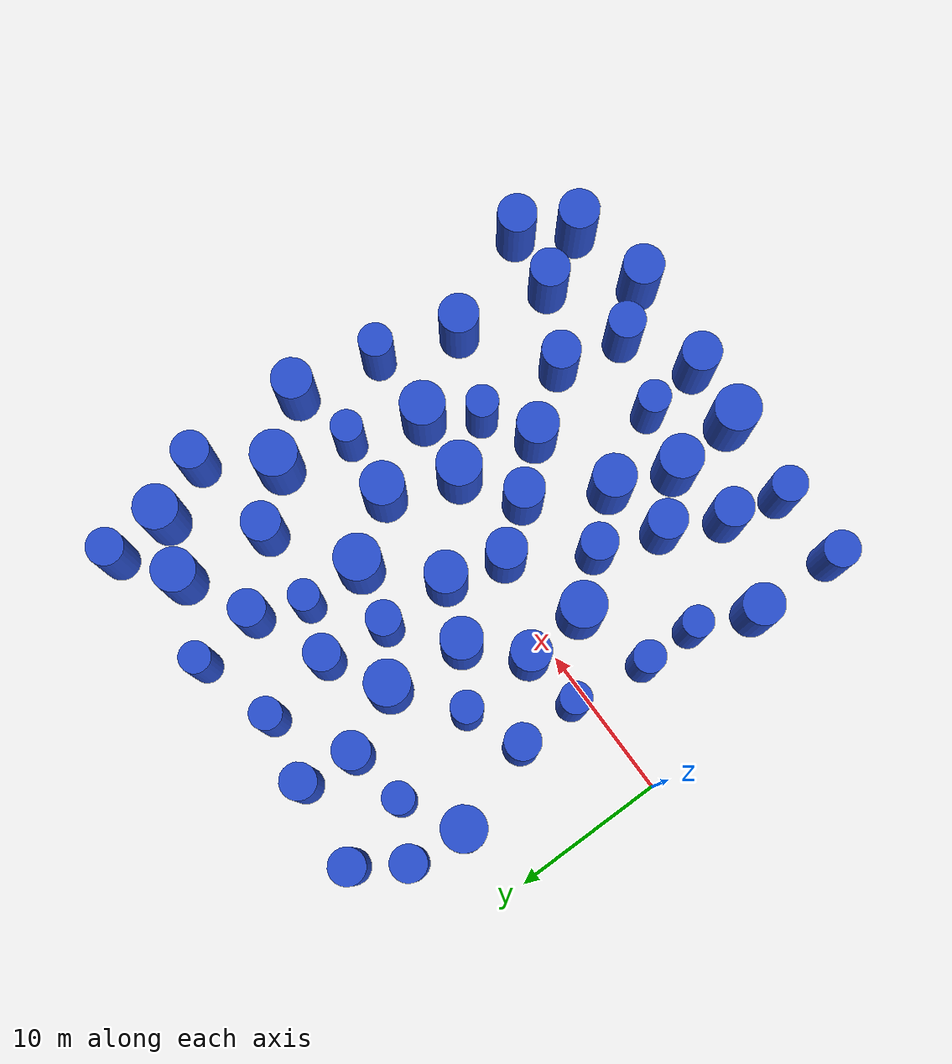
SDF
<sdf version="1.7">
 <world name="default">
  <model name="26">
   <static>1</static>
   <link name="link">
    <inertial>
     <mass>2</mass>
     <inertia><ixx>6.90968</ixx><ixy>0</ixy><ixz>0</ixz><iyy>6.90968</iyy><iyz>0</iyz><izz>1.81936</izz></inertia>
    </inertial>
    <collision name="collision">
     <geometry><cylinder><length>6</length><radius>1.34884</radius></cylinder></geometry>
     <surface><contact><collide_without_contact>1</collide_without_contact></contact></surface>
    </collision>
    <visual name="visual">
     <geometry><cylinder><length>6</length><radius>1.34884</radius></cylinder></geometry>
     <material>
      <script><uri>file://media/materials/scripts/gazebo.material</uri><name>Gazebo/Blue</name></script>
     </material>
    </visual>
    <gravity>0</gravity>
   </link>
   <pose>17.797 2.75537 3 0 -0 0</pose>
  </model>
  <model name="29">
   <static>1</static>
   <link name="link">
    <inertial>
     <mass>2</mass>
     <inertia><ixx>7.11043</ixx><ixy>0</ixy><ixz>0</ixz><iyy>7.11043</iyy><iyz>0</iyz><izz>2.22087</izz></inertia>
    </inertial>
    <collision name="collision">
     <geometry><cylinder><length>6</length><radius>1.49026</radius></cylinder></geometry>
     <surface><contact><collide_without_contact>1</collide_without_contact></contact></surface>
    </collision>
    <visual name="visual">
     <geometry><cylinder><length>6</length><radius>1.49026</radius></cylinder></geometry>
     <material>
      <script><uri>file://media/materials/scripts/gazebo.material</uri><name>Gazebo/Blue</name></script>
     </material>
    </visual>
    <gravity>0</gravity>
   </link>
   <pose>15.2994 -17.7088 3 0 -0 0</pose>
  </model>
  <model name="31">
   <static>1</static>
   <link name="link">
    <inertial>
     <mass>2</mass>
     <inertia><ixx>7.07822</ixx><ixy>0</ixy><ixz>0</ixz><iyy>7.07822</iyy><iyz>0</iyz><izz>2.15645</izz></inertia>
    </inertial>
    <collision name="collision">
     <geometry><cylinder><length>6</length><radius>1.46848</radius></cylinder></geometry>
     <surface><contact><collide_without_contact>1</collide_without_contact></contact></surface>
    </collision>
    <visual name="visual">
     <geometry><cylinder><length>6</length><radius>1.46848</radius></cylinder></geometry>
     <material>
      <script><uri>file://media/materials/scripts/gazebo.material</uri><name>Gazebo/Blue</name></script>
     </material>
    </visual>
    <gravity>0</gravity>
   </link>
   <pose>11.2363 -2.75679 3 0 -0 0</pose>
  </model>
  <model name="36">
   <static>1</static>
   <link name="link">
    <inertial>
     <mass>2</mass>
     <inertia><ixx>7.10005</ixx><ixy>0</ixy><ixz>0</ixz><iyy>7.10005</iyy><iyz>0</iyz><izz>2.2001</izz></inertia>
    </inertial>
    <collision name="collision">
     <geometry><cylinder><length>6</length><radius>1.48327</radius></cylinder></geometry>
     <surface><contact><collide_without_contact>1</collide_without_contact></contact></surface>
    </collision>
    <visual name="visual">
     <geometry><cylinder><length>6</length><radius>1.48327</radius></cylinder></geometry>
     <material>
      <script><uri>file://media/materials/scripts/gazebo.material</uri><name>Gazebo/Blue</name></script>
     </material>
    </visual>
    <gravity>0</gravity>
   </link>
   <pose>21.7263 6.52536 3 0 -0 0</pose>
  </model>
  <model name="44">
   <static>1</static>
   <link name="link">
    <inertial>
     <mass>2</mass>
     <inertia><ixx>6.87836</ixx><ixy>0</ixy><ixz>0</ixz><iyy>6.87836</iyy><iyz>0</iyz><izz>1.75673</izz></inertia>
    </inertial>
    <collision name="collision">
     <geometry><cylinder><length>6</length><radius>1.32542</radius></cylinder></geometry>
     <surface><contact><collide_without_contact>1</collide_without_contact></contact></surface>
    </collision>
    <visual name="visual">
     <geometry><cylinder><length>6</length><radius>1.32542</radius></cylinder></geometry>
     <material>
      <script><uri>file://media/materials/scripts/gazebo.material</uri><name>Gazebo/Blue</name></script>
     </material>
    </visual>
    <gravity>0</gravity>
   </link>
   <pose>4.77864 -11.492 3 0 -0 0</pose>
  </model>
  <model name="54">
   <static>1</static>
   <link name="link">
    <inertial>
     <mass>2</mass>
     <inertia><ixx>6.79907</ixx><ixy>0</ixy><ixz>0</ixz><iyy>6.79907</iyy><iyz>0</iyz><izz>1.59813</izz></inertia>
    </inertial>
    <collision name="collision">
     <geometry><cylinder><length>6</length><radius>1.26417</radius></cylinder></geometry>
     <surface><contact><collide_without_contact>1</collide_without_contact></contact></surface>
    </collision>
    <visual name="visual">
     <geometry><cylinder><length>6</length><radius>1.26417</radius></cylinder></geometry>
     <material>
      <script><uri>file://media/materials/scripts/gazebo.material</uri><name>Gazebo/Blue</name></script>
     </material>
    </visual>
    <gravity>0</gravity>
   </link>
   <pose>33.3522 -14.2803 3 0 -0 0</pose>
  </model>
  <model name="59">
   <static>1</static>
   <link name="link">
    <inertial>
     <mass>2</mass>
     <inertia><ixx>6.64889</ixx><ixy>0</ixy><ixz>0</ixz><iyy>6.64889</iyy><iyz>0</iyz><izz>1.29779</izz></inertia>
    </inertial>
    <collision name="collision">
     <geometry><cylinder><length>6</length><radius>1.1392</radius></cylinder></geometry>
     <surface><contact><collide_without_contact>1</collide_without_contact></contact></surface>
    </collision>
    <visual name="visual">
     <geometry><cylinder><length>6</length><radius>1.1392</radius></cylinder></geometry>
     <material>
      <script><uri>file://media/materials/scripts/gazebo.material</uri><name>Gazebo/Blue</name></script>
     </material>
    </visual>
    <gravity>0</gravity>
   </link>
   <pose>9.66918 -17.3269 3 0 -0 0</pose>
  </model>
  <model name="72">
   <static>1</static>
   <link name="link">
    <inertial>
     <mass>2</mass>
     <inertia><ixx>6.70542</ixx><ixy>0</ixy><ixz>0</ixz><iyy>6.70542</iyy><iyz>0</iyz><izz>1.41083</izz></inertia>
    </inertial>
    <collision name="collision">
     <geometry><cylinder><length>6</length><radius>1.18779</radius></cylinder></geometry>
     <surface><contact><collide_without_contact>1</collide_without_contact></contact></surface>
    </collision>
    <visual name="visual">
     <geometry><cylinder><length>6</length><radius>1.18779</radius></cylinder></geometry>
     <material>
      <script><uri>file://media/materials/scripts/gazebo.material</uri><name>Gazebo/Blue</name></script>
     </material>
    </visual>
    <gravity>0</gravity>
   </link>
   <pose>23.7818 -15.6266 3 0 -0 0</pose>
  </model>
  <model name="73">
   <static>1</static>
   <link name="link">
    <inertial>
     <mass>2</mass>
     <inertia><ixx>6.53105</ixx><ixy>0</ixy><ixz>0</ixz><iyy>6.53105</iyy><iyz>0</iyz><izz>1.06209</izz></inertia>
    </inertial>
    <collision name="collision">
     <geometry><cylinder><length>6</length><radius>1.03058</radius></cylinder></geometry>
     <surface><contact><collide_without_contact>1</collide_without_contact></contact></surface>
    </collision>
    <visual name="visual">
     <geometry><cylinder><length>6</length><radius>1.03058</radius></cylinder></geometry>
     <material>
      <script><uri>file://media/materials/scripts/gazebo.material</uri><name>Gazebo/Blue</name></script>
     </material>
    </visual>
    <gravity>0</gravity>
   </link>
   <pose>6.3697 -4.0288 3 0 -0 0</pose>
  </model>
  <model name="76">
   <static>1</static>
   <link name="link">
    <inertial>
     <mass>2</mass>
     <inertia><ixx>6.69533</ixx><ixy>0</ixy><ixz>0</ixz><iyy>6.69533</iyy><iyz>0</iyz><izz>1.39065</izz></inertia>
    </inertial>
    <collision name="collision">
     <geometry><cylinder><length>6</length><radius>1.17926</radius></cylinder></geometry>
     <surface><contact><collide_without_contact>1</collide_without_contact></contact></surface>
    </collision>
    <visual name="visual">
     <geometry><cylinder><length>6</length><radius>1.17926</radius></cylinder></geometry>
     <material>
      <script><uri>file://media/materials/scripts/gazebo.material</uri><name>Gazebo/Blue</name></script>
     </material>
    </visual>
    <gravity>0</gravity>
   </link>
   <pose>23.186 13.6856 3 0 -0 0</pose>
  </model>
  <model name="84">
   <static>1</static>
   <link name="link">
    <inertial>
     <mass>2</mass>
     <inertia><ixx>6.99272</ixx><ixy>0</ixy><ixz>0</ixz><iyy>6.99272</iyy><iyz>0</iyz><izz>1.98545</izz></inertia>
    </inertial>
    <collision name="collision">
     <geometry><cylinder><length>6</length><radius>1.40906</radius></cylinder></geometry>
     <surface><contact><collide_without_contact>1</collide_without_contact></contact></surface>
    </collision>
    <visual name="visual">
     <geometry><cylinder><length>6</length><radius>1.40906</radius></cylinder></geometry>
     <material>
      <script><uri>file://media/materials/scripts/gazebo.material</uri><name>Gazebo/Blue</name></script>
     </material>
    </visual>
    <gravity>0</gravity>
   </link>
   <pose>14.9496 -13.0744 3 0 -0 0</pose>
  </model>
  <model name="87">
   <static>1</static>
   <link name="link">
    <inertial>
     <mass>2</mass>
     <inertia><ixx>6.52052</ixx><ixy>0</ixy><ixz>0</ixz><iyy>6.52052</iyy><iyz>0</iyz><izz>1.04104</izz></inertia>
    </inertial>
    <collision name="collision">
     <geometry><cylinder><length>6</length><radius>1.02032</radius></cylinder></geometry>
     <surface><contact><collide_without_contact>1</collide_without_contact></contact></surface>
    </collision>
    <visual name="visual">
     <geometry><cylinder><length>6</length><radius>1.02032</radius></cylinder></geometry>
     <material>
      <script><uri>file://media/materials/scripts/gazebo.material</uri><name>Gazebo/Blue</name></script>
     </material>
    </visual>
    <gravity>0</gravity>
   </link>
   <pose>8.57467 13.0563 3 0 -0 0</pose>
  </model>
  <model name="98">
   <static>1</static>
   <link name="link">
    <inertial>
     <mass>2</mass>
     <inertia><ixx>6.89348</ixx><ixy>0</ixy><ixz>0</ixz><iyy>6.89348</iyy><iyz>0</iyz><izz>1.78696</izz></inertia>
    </inertial>
    <collision name="collision">
     <geometry><cylinder><length>6</length><radius>1.33677</radius></cylinder></geometry>
     <surface><contact><collide_without_contact>1</collide_without_contact></contact></surface>
    </collision>
    <visual name="visual">
     <geometry><cylinder><length>6</length><radius>1.33677</radius></cylinder></geometry>
     <material>
      <script><uri>file://media/materials/scripts/gazebo.material</uri><name>Gazebo/Blue</name></script>
     </material>
    </visual>
    <gravity>0</gravity>
   </link>
   <pose>13.9896 4.38214 3 0 -0 0</pose>
  </model>
  <model name="105">
   <static>1</static>
   <link name="link">
    <inertial>
     <mass>2</mass>
     <inertia><ixx>6.53838</ixx><ixy>0</ixy><ixz>0</ixz><iyy>6.53838</iyy><iyz>0</iyz><izz>1.07676</izz></inertia>
    </inertial>
    <collision name="collision">
     <geometry><cylinder><length>6</length><radius>1.03767</radius></cylinder></geometry>
     <surface><contact><collide_without_contact>1</collide_without_contact></contact></surface>
    </collision>
    <visual name="visual">
     <geometry><cylinder><length>6</length><radius>1.03767</radius></cylinder></geometry>
     <material>
      <script><uri>file://media/materials/scripts/gazebo.material</uri><name>Gazebo/Blue</name></script>
     </material>
    </visual>
    <gravity>0</gravity>
   </link>
   <pose>17.3373 16.4703 3 0 -0 0</pose>
  </model>
  <model name="111">
   <static>1</static>
   <link name="link">
    <inertial>
     <mass>2</mass>
     <inertia><ixx>6.54004</ixx><ixy>0</ixy><ixz>0</ixz><iyy>6.54004</iyy><iyz>0</iyz><izz>1.08008</izz></inertia>
    </inertial>
    <collision name="collision">
     <geometry><cylinder><length>6</length><radius>1.03927</radius></cylinder></geometry>
     <surface><contact><collide_without_contact>1</collide_without_contact></contact></surface>
    </collision>
    <visual name="visual">
     <geometry><cylinder><length>6</length><radius>1.03927</radius></cylinder></geometry>
     <material>
      <script><uri>file://media/materials/scripts/gazebo.material</uri><name>Gazebo/Blue</name></script>
     </material>
    </visual>
    <gravity>0</gravity>
   </link>
   <pose>24.9919 -5.33732 3 0 -0 0</pose>
  </model>
  <model name="112">
   <static>1</static>
   <link name="link">
    <inertial>
     <mass>2</mass>
     <inertia><ixx>6.68907</ixx><ixy>0</ixy><ixz>0</ixz><iyy>6.68907</iyy><iyz>0</iyz><izz>1.37813</izz></inertia>
    </inertial>
    <collision name="collision">
     <geometry><cylinder><length>6</length><radius>1.17394</radius></cylinder></geometry>
     <surface><contact><collide_without_contact>1</collide_without_contact></contact></surface>
    </collision>
    <visual name="visual">
     <geometry><cylinder><length>6</length><radius>1.17394</radius></cylinder></geometry>
     <material>
      <script><uri>file://media/materials/scripts/gazebo.material</uri><name>Gazebo/Blue</name></script>
     </material>
    </visual>
    <gravity>0</gravity>
   </link>
   <pose>7.13982 17.8593 3 0 -0 0</pose>
  </model>
  <model name="125">
   <static>1</static>
   <link name="link">
    <inertial>
     <mass>2</mass>
     <inertia><ixx>6.50092</ixx><ixy>0</ixy><ixz>0</ixz><iyy>6.50092</iyy><iyz>0</iyz><izz>1.00184</izz></inertia>
    </inertial>
    <collision name="collision">
     <geometry><cylinder><length>6</length><radius>1.00092</radius></cylinder></geometry>
     <surface><contact><collide_without_contact>1</collide_without_contact></contact></surface>
    </collision>
    <visual name="visual">
     <geometry><cylinder><length>6</length><radius>1.00092</radius></cylinder></geometry>
     <material>
      <script><uri>file://media/materials/scripts/gazebo.material</uri><name>Gazebo/Blue</name></script>
     </material>
    </visual>
    <gravity>0</gravity>
   </link>
   <pose>6.31835 -7.65434 3 0 -0 0</pose>
  </model>
  <model name="128">
   <static>1</static>
   <link name="link">
    <inertial>
     <mass>2</mass>
     <inertia><ixx>6.95358</ixx><ixy>0</ixy><ixz>0</ixz><iyy>6.95358</iyy><iyz>0</iyz><izz>1.90715</izz></inertia>
    </inertial>
    <collision name="collision">
     <geometry><cylinder><length>6</length><radius>1.381</radius></cylinder></geometry>
     <surface><contact><collide_without_contact>1</collide_without_contact></contact></surface>
    </collision>
    <visual name="visual">
     <geometry><cylinder><length>6</length><radius>1.381</radius></cylinder></geometry>
     <material>
      <script><uri>file://media/materials/scripts/gazebo.material</uri><name>Gazebo/Blue</name></script>
     </material>
    </visual>
    <gravity>0</gravity>
   </link>
   <pose>16.4331 -9.06463 3 0 -0 0</pose>
  </model>
  <model name="136">
   <static>1</static>
   <link name="link">
    <inertial>
     <mass>2</mass>
     <inertia><ixx>6.51285</ixx><ixy>0</ixy><ixz>0</ixz><iyy>6.51285</iyy><iyz>0</iyz><izz>1.02571</izz></inertia>
    </inertial>
    <collision name="collision">
     <geometry><cylinder><length>6</length><radius>1.01277</radius></cylinder></geometry>
     <surface><contact><collide_without_contact>1</collide_without_contact></contact></surface>
    </collision>
    <visual name="visual">
     <geometry><cylinder><length>6</length><radius>1.01277</radius></cylinder></geometry>
     <material>
      <script><uri>file://media/materials/scripts/gazebo.material</uri><name>Gazebo/Blue</name></script>
     </material>
    </visual>
    <gravity>0</gravity>
   </link>
   <pose>7.02532 1.01878 3 0 -0 0</pose>
  </model>
  <model name="141">
   <static>1</static>
   <link name="link">
    <inertial>
     <mass>2</mass>
     <inertia><ixx>6.83627</ixx><ixy>0</ixy><ixz>0</ixz><iyy>6.83627</iyy><iyz>0</iyz><izz>1.67253</izz></inertia>
    </inertial>
    <collision name="collision">
     <geometry><cylinder><length>6</length><radius>1.29327</radius></cylinder></geometry>
     <surface><contact><collide_without_contact>1</collide_without_contact></contact></surface>
    </collision>
    <visual name="visual">
     <geometry><cylinder><length>6</length><radius>1.29327</radius></cylinder></geometry>
     <material>
      <script><uri>file://media/materials/scripts/gazebo.material</uri><name>Gazebo/Blue</name></script>
     </material>
    </visual>
    <gravity>0</gravity>
   </link>
   <pose>19.1025 -4.1773 3 0 -0 0</pose>
  </model>
  <model name="152">
   <static>1</static>
   <link name="link">
    <inertial>
     <mass>2</mass>
     <inertia><ixx>6.68676</ixx><ixy>0</ixy><ixz>0</ixz><iyy>6.68676</iyy><iyz>0</iyz><izz>1.37351</izz></inertia>
    </inertial>
    <collision name="collision">
     <geometry><cylinder><length>6</length><radius>1.17197</radius></cylinder></geometry>
     <surface><contact><collide_without_contact>1</collide_without_contact></contact></surface>
    </collision>
    <visual name="visual">
     <geometry><cylinder><length>6</length><radius>1.17197</radius></cylinder></geometry>
     <material>
      <script><uri>file://media/materials/scripts/gazebo.material</uri><name>Gazebo/Blue</name></script>
     </material>
    </visual>
    <gravity>0</gravity>
   </link>
   <pose>18.3013 11.6358 3 0 -0 0</pose>
  </model>
  <model name="166">
   <static>1</static>
   <link name="link">
    <inertial>
     <mass>2</mass>
     <inertia><ixx>6.78781</ixx><ixy>0</ixy><ixz>0</ixz><iyy>6.78781</iyy><iyz>0</iyz><izz>1.57562</izz></inertia>
    </inertial>
    <collision name="collision">
     <geometry><cylinder><length>6</length><radius>1.25524</radius></cylinder></geometry>
     <surface><contact><collide_without_contact>1</collide_without_contact></contact></surface>
    </collision>
    <visual name="visual">
     <geometry><cylinder><length>6</length><radius>1.25524</radius></cylinder></geometry>
     <material>
      <script><uri>file://media/materials/scripts/gazebo.material</uri><name>Gazebo/Blue</name></script>
     </material>
    </visual>
    <gravity>0</gravity>
   </link>
   <pose>27.0002 9.93625 3 0 -0 0</pose>
  </model>
  <model name="174">
   <static>1</static>
   <link name="link">
    <inertial>
     <mass>2</mass>
     <inertia><ixx>6.51236</ixx><ixy>0</ixy><ixz>0</ixz><iyy>6.51236</iyy><iyz>0</iyz><izz>1.02472</izz></inertia>
    </inertial>
    <collision name="collision">
     <geometry><cylinder><length>6</length><radius>1.01228</radius></cylinder></geometry>
     <surface><contact><collide_without_contact>1</collide_without_contact></contact></surface>
    </collision>
    <visual name="visual">
     <geometry><cylinder><length>6</length><radius>1.01228</radius></cylinder></geometry>
     <material>
      <script><uri>file://media/materials/scripts/gazebo.material</uri><name>Gazebo/Blue</name></script>
     </material>
    </visual>
    <gravity>0</gravity>
   </link>
   <pose>22.6077 17.9279 3 0 -0 0</pose>
  </model>
  <model name="180">
   <static>1</static>
   <link name="link">
    <inertial>
     <mass>2</mass>
     <inertia><ixx>6.98453</ixx><ixy>0</ixy><ixz>0</ixz><iyy>6.98453</iyy><iyz>0</iyz><izz>1.96906</izz></inertia>
    </inertial>
    <collision name="collision">
     <geometry><cylinder><length>6</length><radius>1.40323</radius></cylinder></geometry>
     <surface><contact><collide_without_contact>1</collide_without_contact></contact></surface>
    </collision>
    <visual name="visual">
     <geometry><cylinder><length>6</length><radius>1.40323</radius></cylinder></geometry>
     <material>
      <script><uri>file://media/materials/scripts/gazebo.material</uri><name>Gazebo/Blue</name></script>
     </material>
    </visual>
    <gravity>0</gravity>
   </link>
   <pose>27.7296 15.9058 3 0 -0 0</pose>
  </model>
  <model name="205">
   <static>1</static>
   <link name="link">
    <inertial>
     <mass>2</mass>
     <inertia><ixx>6.85131</ixx><ixy>0</ixy><ixz>0</ixz><iyy>6.85131</iyy><iyz>0</iyz><izz>1.70262</izz></inertia>
    </inertial>
    <collision name="collision">
     <geometry><cylinder><length>6</length><radius>1.30484</radius></cylinder></geometry>
     <surface><contact><collide_without_contact>1</collide_without_contact></contact></surface>
    </collision>
    <visual name="visual">
     <geometry><cylinder><length>6</length><radius>1.30484</radius></cylinder></geometry>
     <material>
      <script><uri>file://media/materials/scripts/gazebo.material</uri><name>Gazebo/Blue</name></script>
     </material>
    </visual>
    <gravity>0</gravity>
   </link>
   <pose>31.2571 -17.5684 3 0 -0 0</pose>
  </model>
  <model name="209">
   <static>1</static>
   <link name="link">
    <inertial>
     <mass>2</mass>
     <inertia><ixx>6.52197</ixx><ixy>0</ixy><ixz>0</ixz><iyy>6.52197</iyy><iyz>0</iyz><izz>1.04394</izz></inertia>
    </inertial>
    <collision name="collision">
     <geometry><cylinder><length>6</length><radius>1.02174</radius></cylinder></geometry>
     <surface><contact><collide_without_contact>1</collide_without_contact></contact></surface>
    </collision>
    <visual name="visual">
     <geometry><cylinder><length>6</length><radius>1.02174</radius></cylinder></geometry>
     <material>
      <script><uri>file://media/materials/scripts/gazebo.material</uri><name>Gazebo/Blue</name></script>
     </material>
    </visual>
    <gravity>0</gravity>
   </link>
   <pose>28.6923 2.26967 3 0 -0 0</pose>
  </model>
  <model name="211">
   <static>1</static>
   <link name="link">
    <inertial>
     <mass>2</mass>
     <inertia><ixx>7.05137</ixx><ixy>0</ixy><ixz>0</ixz><iyy>7.05137</iyy><iyz>0</iyz><izz>2.10274</izz></inertia>
    </inertial>
    <collision name="collision">
     <geometry><cylinder><length>6</length><radius>1.45008</radius></cylinder></geometry>
     <surface><contact><collide_without_contact>1</collide_without_contact></contact></surface>
    </collision>
    <visual name="visual">
     <geometry><cylinder><length>6</length><radius>1.45008</radius></cylinder></geometry>
     <material>
      <script><uri>file://media/materials/scripts/gazebo.material</uri><name>Gazebo/Blue</name></script>
     </material>
    </visual>
    <gravity>0</gravity>
   </link>
   <pose>14.4908 9.56033 3 0 -0 0</pose>
  </model>
  <model name="241">
   <static>1</static>
   <link name="link">
    <inertial>
     <mass>2</mass>
     <inertia><ixx>6.792</ixx><ixy>0</ixy><ixz>0</ixz><iyy>6.792</iyy><iyz>0</iyz><izz>1.584</izz></inertia>
    </inertial>
    <collision name="collision">
     <geometry><cylinder><length>6</length><radius>1.25857</radius></cylinder></geometry>
     <surface><contact><collide_without_contact>1</collide_without_contact></contact></surface>
    </collision>
    <visual name="visual">
     <geometry><cylinder><length>6</length><radius>1.25857</radius></cylinder></geometry>
     <material>
      <script><uri>file://media/materials/scripts/gazebo.material</uri><name>Gazebo/Blue</name></script>
     </material>
    </visual>
    <gravity>0</gravity>
   </link>
   <pose>10.556 -13.7087 3 0 -0 0</pose>
  </model>
  <model name="261">
   <static>1</static>
   <link name="link">
    <inertial>
     <mass>2</mass>
     <inertia><ixx>6.82239</ixx><ixy>0</ixy><ixz>0</ixz><iyy>6.82239</iyy><iyz>0</iyz><izz>1.64478</izz></inertia>
    </inertial>
    <collision name="collision">
     <geometry><cylinder><length>6</length><radius>1.28249</radius></cylinder></geometry>
     <surface><contact><collide_without_contact>1</collide_without_contact></contact></surface>
    </collision>
    <visual name="visual">
     <geometry><cylinder><length>6</length><radius>1.28249</radius></cylinder></geometry>
     <material>
      <script><uri>file://media/materials/scripts/gazebo.material</uri><name>Gazebo/Blue</name></script>
     </material>
    </visual>
    <gravity>0</gravity>
   </link>
   <pose>30.3249 -7.49063 3 0 -0 0</pose>
  </model>
  <model name="267">
   <static>1</static>
   <link name="link">
    <inertial>
     <mass>2</mass>
     <inertia><ixx>6.73165</ixx><ixy>0</ixy><ixz>0</ixz><iyy>6.73165</iyy><iyz>0</iyz><izz>1.46331</izz></inertia>
    </inertial>
    <collision name="collision">
     <geometry><cylinder><length>6</length><radius>1.20967</radius></cylinder></geometry>
     <surface><contact><collide_without_contact>1</collide_without_contact></contact></surface>
    </collision>
    <visual name="visual">
     <geometry><cylinder><length>6</length><radius>1.20967</radius></cylinder></geometry>
     <material>
      <script><uri>file://media/materials/scripts/gazebo.material</uri><name>Gazebo/Blue</name></script>
     </material>
    </visual>
    <gravity>0</gravity>
   </link>
   <pose>12.5088 13.6645 3 0 -0 0</pose>
  </model>
  <model name="274">
   <static>1</static>
   <link name="link">
    <inertial>
     <mass>2</mass>
     <inertia><ixx>6.97347</ixx><ixy>0</ixy><ixz>0</ixz><iyy>6.97347</iyy><iyz>0</iyz><izz>1.94694</izz></inertia>
    </inertial>
    <collision name="collision">
     <geometry><cylinder><length>6</length><radius>1.39533</radius></cylinder></geometry>
     <surface><contact><collide_without_contact>1</collide_without_contact></contact></surface>
    </collision>
    <visual name="visual">
     <geometry><cylinder><length>6</length><radius>1.39533</radius></cylinder></geometry>
     <material>
      <script><uri>file://media/materials/scripts/gazebo.material</uri><name>Gazebo/Blue</name></script>
     </material>
    </visual>
    <gravity>0</gravity>
   </link>
   <pose>24.5059 2.62342 3 0 -0 0</pose>
  </model>
  <model name="280">
   <static>1</static>
   <link name="link">
    <inertial>
     <mass>2</mass>
     <inertia><ixx>6.79726</ixx><ixy>0</ixy><ixz>0</ixz><iyy>6.79726</iyy><iyz>0</iyz><izz>1.59452</izz></inertia>
    </inertial>
    <collision name="collision">
     <geometry><cylinder><length>6</length><radius>1.26274</radius></cylinder></geometry>
     <surface><contact><collide_without_contact>1</collide_without_contact></contact></surface>
    </collision>
    <visual name="visual">
     <geometry><cylinder><length>6</length><radius>1.26274</radius></cylinder></geometry>
     <material>
      <script><uri>file://media/materials/scripts/gazebo.material</uri><name>Gazebo/Blue</name></script>
     </material>
    </visual>
    <gravity>0</gravity>
   </link>
   <pose>12.3694 -10.0194 3 0 -0 0</pose>
  </model>
  <model name="286">
   <static>1</static>
   <link name="link">
    <inertial>
     <mass>2</mass>
     <inertia><ixx>6.76623</ixx><ixy>0</ixy><ixz>0</ixz><iyy>6.76623</iyy><iyz>0</iyz><izz>1.53247</izz></inertia>
    </inertial>
    <collision name="collision">
     <geometry><cylinder><length>6</length><radius>1.23793</radius></cylinder></geometry>
     <surface><contact><collide_without_contact>1</collide_without_contact></contact></surface>
    </collision>
    <visual name="visual">
     <geometry><cylinder><length>6</length><radius>1.23793</radius></cylinder></geometry>
     <material>
      <script><uri>file://media/materials/scripts/gazebo.material</uri><name>Gazebo/Blue</name></script>
     </material>
    </visual>
    <gravity>0</gravity>
   </link>
   <pose>24.6993 -11.2101 3 0 -0 0</pose>
  </model>
  <model name="297">
   <static>1</static>
   <link name="link">
    <inertial>
     <mass>2</mass>
     <inertia><ixx>6.66891</ixx><ixy>0</ixy><ixz>0</ixz><iyy>6.66891</iyy><iyz>0</iyz><izz>1.33783</izz></inertia>
    </inertial>
    <collision name="collision">
     <geometry><cylinder><length>6</length><radius>1.15664</radius></cylinder></geometry>
     <surface><contact><collide_without_contact>1</collide_without_contact></contact></surface>
    </collision>
    <visual name="visual">
     <geometry><cylinder><length>6</length><radius>1.15664</radius></cylinder></geometry>
     <material>
      <script><uri>file://media/materials/scripts/gazebo.material</uri><name>Gazebo/Blue</name></script>
     </material>
    </visual>
    <gravity>0</gravity>
   </link>
   <pose>6.83389 5.13893 3 0 -0 0</pose>
  </model>
  <model name="315">
   <static>1</static>
   <link name="link">
    <inertial>
     <mass>2</mass>
     <inertia><ixx>6.71125</ixx><ixy>0</ixy><ixz>0</ixz><iyy>6.71125</iyy><iyz>0</iyz><izz>1.4225</izz></inertia>
    </inertial>
    <collision name="collision">
     <geometry><cylinder><length>6</length><radius>1.19268</radius></cylinder></geometry>
     <surface><contact><collide_without_contact>1</collide_without_contact></contact></surface>
    </collision>
    <visual name="visual">
     <geometry><cylinder><length>6</length><radius>1.19268</radius></cylinder></geometry>
     <material>
      <script><uri>file://media/materials/scripts/gazebo.material</uri><name>Gazebo/Blue</name></script>
     </material>
    </visual>
    <gravity>0</gravity>
   </link>
   <pose>31.3491 18.4289 3 0 -0 0</pose>
  </model>
  <model name="352">
   <static>1</static>
   <link name="link">
    <inertial>
     <mass>2</mass>
     <inertia><ixx>6.73319</ixx><ixy>0</ixy><ixz>0</ixz><iyy>6.73319</iyy><iyz>0</iyz><izz>1.46637</izz></inertia>
    </inertial>
    <collision name="collision">
     <geometry><cylinder><length>6</length><radius>1.21094</radius></cylinder></geometry>
     <surface><contact><collide_without_contact>1</collide_without_contact></contact></surface>
    </collision>
    <visual name="visual">
     <geometry><cylinder><length>6</length><radius>1.21094</radius></cylinder></geometry>
     <material>
      <script><uri>file://media/materials/scripts/gazebo.material</uri><name>Gazebo/Blue</name></script>
     </material>
    </visual>
    <gravity>0</gravity>
   </link>
   <pose>33.1931 10.8344 3 0 -0 0</pose>
  </model>
  <model name="354">
   <static>1</static>
   <link name="link">
    <inertial>
     <mass>2</mass>
     <inertia><ixx>6.86387</ixx><ixy>0</ixy><ixz>0</ixz><iyy>6.86387</iyy><iyz>0</iyz><izz>1.72774</izz></inertia>
    </inertial>
    <collision name="collision">
     <geometry><cylinder><length>6</length><radius>1.31444</radius></cylinder></geometry>
     <surface><contact><collide_without_contact>1</collide_without_contact></contact></surface>
    </collision>
    <visual name="visual">
     <geometry><cylinder><length>6</length><radius>1.31444</radius></cylinder></geometry>
     <material>
      <script><uri>file://media/materials/scripts/gazebo.material</uri><name>Gazebo/Blue</name></script>
     </material>
    </visual>
    <gravity>0</gravity>
   </link>
   <pose>33.1294 3.22361 3 0 -0 0</pose>
  </model>
  <model name="380">
   <static>1</static>
   <link name="link">
    <inertial>
     <mass>2</mass>
     <inertia><ixx>6.54697</ixx><ixy>0</ixy><ixz>0</ixz><iyy>6.54697</iyy><iyz>0</iyz><izz>1.09394</izz></inertia>
    </inertial>
    <collision name="collision">
     <geometry><cylinder><length>6</length><radius>1.04592</radius></cylinder></geometry>
     <surface><contact><collide_without_contact>1</collide_without_contact></contact></surface>
    </collision>
    <visual name="visual">
     <geometry><cylinder><length>6</length><radius>1.04592</radius></cylinder></geometry>
     <material>
      <script><uri>file://media/materials/scripts/gazebo.material</uri><name>Gazebo/Blue</name></script>
     </material>
    </visual>
    <gravity>0</gravity>
   </link>
   <pose>18.9273 -14.0295 3 0 -0 0</pose>
  </model>
  <model name="404">
   <static>1</static>
   <link name="link">
    <inertial>
     <mass>2</mass>
     <inertia><ixx>7.0517</ixx><ixy>0</ixy><ixz>0</ixz><iyy>7.0517</iyy><iyz>0</iyz><izz>2.10341</izz></inertia>
    </inertial>
    <collision name="collision">
     <geometry><cylinder><length>6</length><radius>1.45031</radius></cylinder></geometry>
     <surface><contact><collide_without_contact>1</collide_without_contact></contact></surface>
    </collision>
    <visual name="visual">
     <geometry><cylinder><length>6</length><radius>1.45031</radius></cylinder></geometry>
     <material>
      <script><uri>file://media/materials/scripts/gazebo.material</uri><name>Gazebo/Blue</name></script>
     </material>
    </visual>
    <gravity>0</gravity>
   </link>
   <pose>22.712 -1.88965 3 0 -0 0</pose>
  </model>
  <model name="407">
   <static>1</static>
   <link name="link">
    <inertial>
     <mass>2</mass>
     <inertia><ixx>6.59186</ixx><ixy>0</ixy><ixz>0</ixz><iyy>6.59186</iyy><iyz>0</iyz><izz>1.18371</izz></inertia>
    </inertial>
    <collision name="collision">
     <geometry><cylinder><length>6</length><radius>1.08799</radius></cylinder></geometry>
     <surface><contact><collide_without_contact>1</collide_without_contact></contact></surface>
    </collision>
    <visual name="visual">
     <geometry><cylinder><length>6</length><radius>1.08799</radius></cylinder></geometry>
     <material>
      <script><uri>file://media/materials/scripts/gazebo.material</uri><name>Gazebo/Blue</name></script>
     </material>
    </visual>
    <gravity>0</gravity>
   </link>
   <pose>32.0322 -2.34841 3 0 -0 0</pose>
  </model>
  <model name="411">
   <static>1</static>
   <link name="link">
    <inertial>
     <mass>2</mass>
     <inertia><ixx>6.89217</ixx><ixy>0</ixy><ixz>0</ixz><iyy>6.89217</iyy><iyz>0</iyz><izz>1.78433</izz></inertia>
    </inertial>
    <collision name="collision">
     <geometry><cylinder><length>6</length><radius>1.33579</radius></cylinder></geometry>
     <surface><contact><collide_without_contact>1</collide_without_contact></contact></surface>
    </collision>
    <visual name="visual">
     <geometry><cylinder><length>6</length><radius>1.33579</radius></cylinder></geometry>
     <material>
      <script><uri>file://media/materials/scripts/gazebo.material</uri><name>Gazebo/Blue</name></script>
     </material>
    </visual>
    <gravity>0</gravity>
   </link>
   <pose>21.8628 -7.27266 3 0 -0 0</pose>
  </model>
  <model name="430">
   <static>1</static>
   <link name="link">
    <inertial>
     <mass>2</mass>
     <inertia><ixx>7.11921</ixx><ixy>0</ixy><ixz>0</ixz><iyy>7.11921</iyy><iyz>0</iyz><izz>2.23843</izz></inertia>
    </inertial>
    <collision name="collision">
     <geometry><cylinder><length>6</length><radius>1.49614</radius></cylinder></geometry>
     <surface><contact><collide_without_contact>1</collide_without_contact></contact></surface>
    </collision>
    <visual name="visual">
     <geometry><cylinder><length>6</length><radius>1.49614</radius></cylinder></geometry>
     <material>
      <script><uri>file://media/materials/scripts/gazebo.material</uri><name>Gazebo/Blue</name></script>
     </material>
    </visual>
    <gravity>0</gravity>
   </link>
   <pose>29.9769 6.84613 3 0 -0 0</pose>
  </model>
  <model name="431">
   <static>1</static>
   <link name="link">
    <inertial>
     <mass>2</mass>
     <inertia><ixx>6.79787</ixx><ixy>0</ixy><ixz>0</ixz><iyy>6.79787</iyy><iyz>0</iyz><izz>1.59574</izz></inertia>
    </inertial>
    <collision name="collision">
     <geometry><cylinder><length>6</length><radius>1.26322</radius></cylinder></geometry>
     <surface><contact><collide_without_contact>1</collide_without_contact></contact></surface>
    </collision>
    <visual name="visual">
     <geometry><cylinder><length>6</length><radius>1.26322</radius></cylinder></geometry>
     <material>
      <script><uri>file://media/materials/scripts/gazebo.material</uri><name>Gazebo/Blue</name></script>
     </material>
    </visual>
    <gravity>0</gravity>
   </link>
   <pose>29.3131 -13.8253 3 0 -0 0</pose>
  </model>
  <model name="434">
   <static>1</static>
   <link name="link">
    <inertial>
     <mass>2</mass>
     <inertia><ixx>6.70579</ixx><ixy>0</ixy><ixz>0</ixz><iyy>6.70579</iyy><iyz>0</iyz><izz>1.41157</izz></inertia>
    </inertial>
    <collision name="collision">
     <geometry><cylinder><length>6</length><radius>1.1881</radius></cylinder></geometry>
     <surface><contact><collide_without_contact>1</collide_without_contact></contact></surface>
    </collision>
    <visual name="visual">
     <geometry><cylinder><length>6</length><radius>1.1881</radius></cylinder></geometry>
     <material>
      <script><uri>file://media/materials/scripts/gazebo.material</uri><name>Gazebo/Blue</name></script>
     </material>
    </visual>
    <gravity>0</gravity>
   </link>
   <pose>13.747 -5.8514 3 0 -0 0</pose>
  </model>
  <model name="443">
   <static>1</static>
   <link name="link">
    <inertial>
     <mass>2</mass>
     <inertia><ixx>6.67689</ixx><ixy>0</ixy><ixz>0</ixz><iyy>6.67689</iyy><iyz>0</iyz><izz>1.35378</izz></inertia>
    </inertial>
    <collision name="collision">
     <geometry><cylinder><length>6</length><radius>1.16352</radius></cylinder></geometry>
     <surface><contact><collide_without_contact>1</collide_without_contact></contact></surface>
    </collision>
    <visual name="visual">
     <geometry><cylinder><length>6</length><radius>1.16352</radius></cylinder></geometry>
     <material>
      <script><uri>file://media/materials/scripts/gazebo.material</uri><name>Gazebo/Blue</name></script>
     </material>
    </visual>
    <gravity>0</gravity>
   </link>
   <pose>12.909 17.2585 3 0 -0 0</pose>
  </model>
  <model name="445">
   <static>1</static>
   <link name="link">
    <inertial>
     <mass>2</mass>
     <inertia><ixx>6.52914</ixx><ixy>0</ixy><ixz>0</ixz><iyy>6.52914</iyy><iyz>0</iyz><izz>1.05829</izz></inertia>
    </inertial>
    <collision name="collision">
     <geometry><cylinder><length>6</length><radius>1.02873</radius></cylinder></geometry>
     <surface><contact><collide_without_contact>1</collide_without_contact></contact></surface>
    </collision>
    <visual name="visual">
     <geometry><cylinder><length>6</length><radius>1.02873</radius></cylinder></geometry>
     <material>
      <script><uri>file://media/materials/scripts/gazebo.material</uri><name>Gazebo/Blue</name></script>
     </material>
    </visual>
    <gravity>0</gravity>
   </link>
   <pose>10.4783 6.58846 3 0 -0 0</pose>
  </model>
  <model name="447">
   <static>1</static>
   <link name="link">
    <inertial>
     <mass>2</mass>
     <inertia><ixx>7.02585</ixx><ixy>0</ixy><ixz>0</ixz><iyy>7.02585</iyy><iyz>0</iyz><izz>2.0517</izz></inertia>
    </inertial>
    <collision name="collision">
     <geometry><cylinder><length>6</length><radius>1.43237</radius></cylinder></geometry>
     <surface><contact><collide_without_contact>1</collide_without_contact></contact></surface>
    </collision>
    <visual name="visual">
     <geometry><cylinder><length>6</length><radius>1.43237</radius></cylinder></geometry>
     <material>
      <script><uri>file://media/materials/scripts/gazebo.material</uri><name>Gazebo/Blue</name></script>
     </material>
    </visual>
    <gravity>0</gravity>
   </link>
   <pose>27.0894 -2.30818 3 0 -0 0</pose>
  </model>
  <model name="465">
   <static>1</static>
   <link name="link">
    <inertial>
     <mass>2</mass>
     <inertia><ixx>6.66766</ixx><ixy>0</ixy><ixz>0</ixz><iyy>6.66766</iyy><iyz>0</iyz><izz>1.33531</izz></inertia>
    </inertial>
    <collision name="collision">
     <geometry><cylinder><length>6</length><radius>1.15556</radius></cylinder></geometry>
     <surface><contact><collide_without_contact>1</collide_without_contact></contact></surface>
    </collision>
    <visual name="visual">
     <geometry><cylinder><length>6</length><radius>1.15556</radius></cylinder></geometry>
     <material>
      <script><uri>file://media/materials/scripts/gazebo.material</uri><name>Gazebo/Blue</name></script>
     </material>
    </visual>
    <gravity>0</gravity>
   </link>
   <pose>4.62276 -17.3669 3 0 -0 0</pose>
  </model>
  <model name="473">
   <static>1</static>
   <link name="link">
    <inertial>
     <mass>2</mass>
     <inertia><ixx>6.8027</ixx><ixy>0</ixy><ixz>0</ixz><iyy>6.8027</iyy><iyz>0</iyz><izz>1.60541</izz></inertia>
    </inertial>
    <collision name="collision">
     <geometry><cylinder><length>6</length><radius>1.26705</radius></cylinder></geometry>
     <surface><contact><collide_without_contact>1</collide_without_contact></contact></surface>
    </collision>
    <visual name="visual">
     <geometry><cylinder><length>6</length><radius>1.26705</radius></cylinder></geometry>
     <material>
      <script><uri>file://media/materials/scripts/gazebo.material</uri><name>Gazebo/Blue</name></script>
     </material>
    </visual>
    <gravity>0</gravity>
   </link>
   <pose>19.4456 -18.1142 3 0 -0 0</pose>
  </model>
  <model name="476">
   <static>1</static>
   <link name="link">
    <inertial>
     <mass>2</mass>
     <inertia><ixx>7.01955</ixx><ixy>0</ixy><ixz>0</ixz><iyy>7.01955</iyy><iyz>0</iyz><izz>2.03911</izz></inertia>
    </inertial>
    <collision name="collision">
     <geometry><cylinder><length>6</length><radius>1.42797</radius></cylinder></geometry>
     <surface><contact><collide_without_contact>1</collide_without_contact></contact></surface>
    </collision>
    <visual name="visual">
     <geometry><cylinder><length>6</length><radius>1.42797</radius></cylinder></geometry>
     <material>
      <script><uri>file://media/materials/scripts/gazebo.material</uri><name>Gazebo/Blue</name></script>
     </material>
    </visual>
    <gravity>0</gravity>
   </link>
   <pose>31.5422 14.562 3 0 -0 0</pose>
  </model>
  <model name="499">
   <static>1</static>
   <link name="link">
    <inertial>
     <mass>2</mass>
     <inertia><ixx>6.81798</ixx><ixy>0</ixy><ixz>0</ixz><iyy>6.81798</iyy><iyz>0</iyz><izz>1.63595</izz></inertia>
    </inertial>
    <collision name="collision">
     <geometry><cylinder><length>6</length><radius>1.27904</radius></cylinder></geometry>
     <surface><contact><collide_without_contact>1</collide_without_contact></contact></surface>
    </collision>
    <visual name="visual">
     <geometry><cylinder><length>6</length><radius>1.27904</radius></cylinder></geometry>
     <material>
      <script><uri>file://media/materials/scripts/gazebo.material</uri><name>Gazebo/Blue</name></script>
     </material>
    </visual>
    <gravity>0</gravity>
   </link>
   <pose>10.8772 1.46668 3 0 -0 0</pose>
  </model>
  <model name="500">
   <static>1</static>
   <link name="link">
    <inertial>
     <mass>2</mass>
     <inertia><ixx>7.02979</ixx><ixy>0</ixy><ixz>0</ixz><iyy>7.02979</iyy><iyz>0</iyz><izz>2.05959</izz></inertia>
    </inertial>
    <collision name="collision">
     <geometry><cylinder><length>6</length><radius>1.43513</radius></cylinder></geometry>
     <surface><contact><collide_without_contact>1</collide_without_contact></contact></surface>
    </collision>
    <visual name="visual">
     <geometry><cylinder><length>6</length><radius>1.43513</radius></cylinder></geometry>
     <material>
      <script><uri>file://media/materials/scripts/gazebo.material</uri><name>Gazebo/Blue</name></script>
     </material>
    </visual>
    <gravity>0</gravity>
   </link>
   <pose>4.8041 11.0073 3 0 -0 0</pose>
  </model>
  <model name="509">
   <static>1</static>
   <link name="link">
    <inertial>
     <mass>2</mass>
     <inertia><ixx>6.84646</ixx><ixy>0</ixy><ixz>0</ixz><iyy>6.84646</iyy><iyz>0</iyz><izz>1.69291</izz></inertia>
    </inertial>
    <collision name="collision">
     <geometry><cylinder><length>6</length><radius>1.30112</radius></cylinder></geometry>
     <surface><contact><collide_without_contact>1</collide_without_contact></contact></surface>
    </collision>
    <visual name="visual">
     <geometry><cylinder><length>6</length><radius>1.30112</radius></cylinder></geometry>
     <material>
      <script><uri>file://media/materials/scripts/gazebo.material</uri><name>Gazebo/Blue</name></script>
     </material>
    </visual>
    <gravity>0</gravity>
   </link>
   <pose>16.7598 -1.07392 3 0 -0 0</pose>
  </model>
  <model name="511">
   <static>1</static>
   <link name="link">
    <inertial>
     <mass>2</mass>
     <inertia><ixx>6.86173</ixx><ixy>0</ixy><ixz>0</ixz><iyy>6.86173</iyy><iyz>0</iyz><izz>1.72346</izz></inertia>
    </inertial>
    <collision name="collision">
     <geometry><cylinder><length>6</length><radius>1.31281</radius></cylinder></geometry>
     <surface><contact><collide_without_contact>1</collide_without_contact></contact></surface>
    </collision>
    <visual name="visual">
     <geometry><cylinder><length>6</length><radius>1.31281</radius></cylinder></geometry>
     <material>
      <script><uri>file://media/materials/scripts/gazebo.material</uri><name>Gazebo/Blue</name></script>
     </material>
    </visual>
    <gravity>0</gravity>
   </link>
   <pose>26.0057 -18.617 3 0 -0 0</pose>
  </model>
  <model name="544">
   <static>1</static>
   <link name="link">
    <inertial>
     <mass>2</mass>
     <inertia><ixx>6.6206</ixx><ixy>0</ixy><ixz>0</ixz><iyy>6.6206</iyy><iyz>0</iyz><izz>1.2412</izz></inertia>
    </inertial>
    <collision name="collision">
     <geometry><cylinder><length>6</length><radius>1.11409</radius></cylinder></geometry>
     <surface><contact><collide_without_contact>1</collide_without_contact></contact></surface>
    </collision>
    <visual name="visual">
     <geometry><cylinder><length>6</length><radius>1.11409</radius></cylinder></geometry>
     <material>
      <script><uri>file://media/materials/scripts/gazebo.material</uri><name>Gazebo/Blue</name></script>
     </material>
    </visual>
    <gravity>0</gravity>
   </link>
   <pose>17.7793 7.4374 3 0 -0 0</pose>
  </model>
  <model name="561">
   <static>1</static>
   <link name="link">
    <inertial>
     <mass>2</mass>
     <inertia><ixx>6.67439</ixx><ixy>0</ixy><ixz>0</ixz><iyy>6.67439</iyy><iyz>0</iyz><izz>1.34877</izz></inertia>
    </inertial>
    <collision name="collision">
     <geometry><cylinder><length>6</length><radius>1.16137</radius></cylinder></geometry>
     <surface><contact><collide_without_contact>1</collide_without_contact></contact></surface>
    </collision>
    <visual name="visual">
     <geometry><cylinder><length>6</length><radius>1.16137</radius></cylinder></geometry>
     <material>
      <script><uri>file://media/materials/scripts/gazebo.material</uri><name>Gazebo/Blue</name></script>
     </material>
    </visual>
    <gravity>0</gravity>
   </link>
   <pose>5.13185 14.8344 3 0 -0 0</pose>
  </model>
  <model name="568">
   <static>1</static>
   <link name="link">
    <inertial>
     <mass>2</mass>
     <inertia><ixx>6.5</ixx><ixy>0</ixy><ixz>0</ixz><iyy>6.5</iyy><iyz>0</iyz><izz>1</izz></inertia>
    </inertial>
    <collision name="collision">
     <geometry><cylinder><length>6</length><radius>1</radius></cylinder></geometry>
     <surface><contact><collide_without_contact>1</collide_without_contact></contact></surface>
    </collision>
    <visual name="visual">
     <geometry><cylinder><length>6</length><radius>1</radius></cylinder></geometry>
     <material>
      <script><uri>file://media/materials/scripts/gazebo.material</uri><name>Gazebo/Blue</name></script>
     </material>
    </visual>
    <gravity>0</gravity>
   </link>
   <pose>21.7754 10.4823 3 0 -0 0</pose>
  </model>
 </world>
</sdf>
